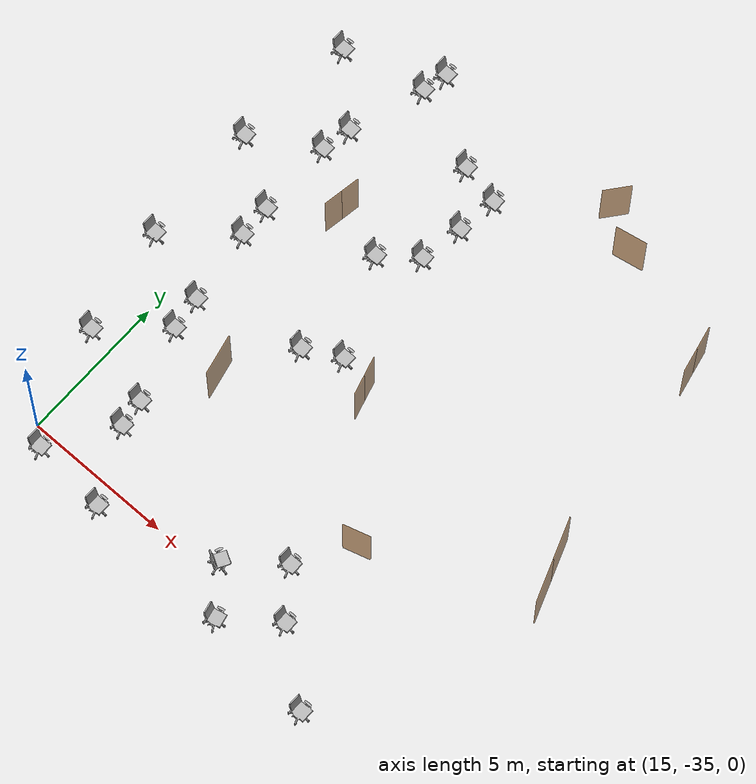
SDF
<sdf version="1.7">
 <world name="world">
  <include><uri>model://sun</uri></include>
  <include>
   <name>OpenRobotics/OfficeChairBlue_116</name>
   <uri>model://OfficeChairBlue</uri>
   <pose>25.001755541891264 -34.734307962925655 0.0 0 0 1.5708</pose>
   <static>True</static>
  </include>
  <include>
   <name>OpenRobotics/OfficeChairBlue_117</name>
   <uri>model://OfficeChairBlue</uri>
   <pose>23.899707976555813 -33.27371550019346 0.0 0 0 1.5708</pose>
   <static>True</static>
  </include>
  <include>
   <name>OpenRobotics/OfficeChairBlue_118</name>
   <uri>model://OfficeChairBlue</uri>
   <pose>22.20021698955487 -34.52182231180213 0.0 0 0 2.63</pose>
   <static>True</static>
  </include>
  <include>
   <name>OpenRobotics/OfficeChairBlue_119</name>
   <uri>model://OfficeChairBlue</uri>
   <pose>23.34208097560178 -35.99562121110694 0.0 0 0 1.7862</pose>
   <static>True</static>
  </include>
  <include>
   <name>OpenRobotics/OfficeChairBlue_123</name>
   <uri>model://OfficeChairBlue</uri>
   <pose>27.179339243920133 -36.47361537063805 0.0 0 0 1.5708</pose>
   <static>True</static>
  </include>
  <include>
   <name>OpenRobotics/OfficeChairBlue_128</name>
   <uri>model://OfficeChairBlue</uri>
   <pose>19.515269589945344 -27.90076548057328 0.0 0 0 1.5708</pose>
   <static>True</static>
  </include>
  <include>
   <name>OpenRobotics/OfficeChairBlue_129</name>
   <uri>model://OfficeChairBlue</uri>
   <pose>20.713605875664694 -27.27572651980084 0.0 0 0 1.5708</pose>
   <static>True</static>
  </include>
  <include>
   <name>OpenRobotics/OfficeChairBlue_130</name>
   <uri>model://OfficeChairBlue</uri>
   <pose>19.193880114846177 -24.112292183176148 0.0 0 0 1.5708</pose>
   <static>True</static>
  </include>
  <include>
   <name>OpenRobotics/OfficeChairBlue_131</name>
   <uri>model://OfficeChairBlue</uri>
   <pose>20.331013437046177 -23.207651277952206 0.0 0 0 1.5708</pose>
   <static>True</static>
  </include>
  <include>
   <name>OpenRobotics/OfficeChairBlue_132</name>
   <uri>model://OfficeChairBlue</uri>
   <pose>20.572671515225622 -21.717295055183225 0.0 0 0 1.5708</pose>
   <static>True</static>
  </include>
  <include>
   <name>OpenRobotics/OfficeChairBlue_133</name>
   <uri>model://OfficeChairBlue</uri>
   <pose>20.739033193841813 -20.348753426472076 0.0 0 0 1.5708</pose>
   <static>True</static>
  </include>
  <include>
   <name>OpenRobotics/OfficeChairBlue_134</name>
   <uri>model://OfficeChairBlue</uri>
   <pose>19.362114347901766 -20.042738608875354 0.0 0 0 1.5708</pose>
   <static>True</static>
  </include>
  <include>
   <name>OpenRobotics/OfficeChairBlue_151</name>
   <uri>model://OfficeChairBlue</uri>
   <pose>16.17640646899789 -29.975260132938327 0.0 0 0 1.5708</pose>
   <static>True</static>
  </include>
  <include>
   <name>OpenRobotics/OfficeChairBlue_152</name>
   <uri>model://OfficeChairBlue</uri>
   <pose>16.026897780336302 -28.822357931248636 0.0 0 0 1.5708</pose>
   <static>True</static>
  </include>
  <include>
   <name>OpenRobotics/OfficeChairBlue_153</name>
   <uri>model://OfficeChairBlue</uri>
   <pose>15.663917885583086 -26.302786655287193 0.0 0 0 1.5708</pose>
   <static>True</static>
  </include>
  <include>
   <name>OpenRobotics/OfficeChairBlue_154</name>
   <uri>model://OfficeChairBlue</uri>
   <pose>15.621243355464122 -25.171172440908585 0.0 0 0 1.5708</pose>
   <static>True</static>
  </include>
  <include>
   <name>OpenRobotics/OfficeChairBlue_155</name>
   <uri>model://OfficeChairBlue</uri>
   <pose>15.599856812656235 -22.502191031782363 0.0 0 0 1.5708</pose>
   <static>True</static>
  </include>
  <include>
   <name>OpenRobotics/OfficeChairBlue_156</name>
   <uri>model://OfficeChairBlue</uri>
   <pose>15.792040031436787 -21.477312420449564 0.0 0 0 1.5708</pose>
   <static>True</static>
  </include>
  <include>
   <name>OpenRobotics/OfficeChairBlue_157</name>
   <uri>model://OfficeChairBlue</uri>
   <pose>16.624833979485846 -18.936453157177045 0.0 0 0 1.5708</pose>
   <static>True</static>
  </include>
  <include>
   <name>OpenRobotics/OfficeChairBlue_158</name>
   <uri>model://OfficeChairBlue</uri>
   <pose>16.816918642769583 -18.08237122181691 0.0 0 0 1.5708</pose>
   <static>True</static>
  </include>
  <include>
   <name>OpenRobotics/OfficeChairBlue_176</name>
   <uri>model://OfficeChairBlue</uri>
   <pose>13.827730424505924 -19.555677343637665 0.0 0 0 1.5708</pose>
   <static>True</static>
  </include>
  <include>
   <name>OpenRobotics/OfficeChairBlue_177</name>
   <uri>model://OfficeChairBlue</uri>
   <pose>13.46475052975271 -23.783313934822566 0.0 0 0 1.5708</pose>
   <static>True</static>
  </include>
  <include>
   <name>OpenRobotics/OfficeChairBlue_178</name>
   <uri>model://OfficeChairBlue</uri>
   <pose>13.592872675606408 -28.05362505612643 0.0 0 0 1.5708</pose>
   <static>True</static>
  </include>
  <include>
   <name>OpenRobotics/OfficeChairBlue_179</name>
   <uri>model://OfficeChairBlue</uri>
   <pose>15.706690971198858 -35.505406169971316 0.0 0 0 1.5708</pose>
   <static>True</static>
  </include>
  <include>
   <name>OpenRobotics/OfficeChairBlue_180</name>
   <uri>model://OfficeChairBlue</uri>
   <pose>14.27605937949707 -31.683424003658597 0.0 0 0 1.5708</pose>
   <static>True</static>
  </include>
  <include>
   <name>OpenRobotics/OfficeChairBlue_181</name>
   <uri>model://OfficeChairBlue</uri>
   <pose>18.290027653596717 -35.7446989162273 0.0 0 0 1.5708</pose>
   <static>True</static>
  </include>
  <include>
   <name>OpenRobotics/OfficeChairBlue_182</name>
   <uri>model://OfficeChairBlue</uri>
   <pose>17.1190897959907 -33.363006780303806 0.0 0 0 1.5708</pose>
   <static>True</static>
  </include>
  <include>
   <name>OpenRobotics/OfficeChairBlue_183</name>
   <uri>model://OfficeChairBlue</uri>
   <pose>16.99362864855088 -32.421998896756776 0.0 0 0 1.5708</pose>
   <static>True</static>
  </include>
  <model name="double_hinged_5">
   <pose>29.936084322956134 -28.39053702197326 0.0 0 0 1.9207883309930311</pose>
   <link name="right">
    <pose>0.7085763028540664 0 1.11 0 0 0</pose>
    <visual name="right_visual">
     <geometry><box><size>1.4071526057081327 0.03 2.2</size></box></geometry>
     <material><ambient>0.5 0.25 0 0.6</ambient><diffuse>0.5 0.25 0 0.6</diffuse></material>
    </visual>
    <collision name="right_collision">
     <geometry><box><size>1.4071526057081327 0.03 2.2</size></box></geometry>
     <surface><contact><collide_bitmask>0x02</collide_bitmask></contact></surface>
    </collision>
    <inertial>
     <mass>50.0</mass>
     <inertia><ixx>20.17041666666667</ixx><iyy>28.416993565629955</iyy><izz>8.254076898963282</izz></inertia>
    </inertial>
   </link>
   <joint name="right_joint" type="revolute">
    <parent>world</parent>
    <child>right</child>
    <axis><xyz>0 0 -1</xyz><limit><lower>0</lower><upper>1.57</upper></limit></axis>
    <pose>0.7085763028540664 0 0 0 0 0</pose>
   </joint>
   <link name="left">
    <pose>-0.7085763028540664 0 1.11 0 0 0</pose>
    <visual name="left_visual">
     <geometry><box><size>1.4071526057081327 0.03 2.2</size></box></geometry>
     <material><ambient>0.5 0.25 0 0.6</ambient><diffuse>0.5 0.25 0 0.6</diffuse></material>
    </visual>
    <collision name="left_collision">
     <geometry><box><size>1.4071526057081327 0.03 2.2</size></box></geometry>
     <surface><contact><collide_bitmask>0x02</collide_bitmask></contact></surface>
    </collision>
    <inertial>
     <mass>50.0</mass>
     <inertia><ixx>20.17041666666667</ixx><iyy>28.416993565629955</iyy><izz>8.254076898963282</izz></inertia>
    </inertial>
   </link>
   <joint name="left_joint" type="revolute">
    <parent>world</parent>
    <child>left</child>
    <axis><xyz>0 0 -1</xyz><limit><lower>-1.57</lower><upper>0</upper></limit></axis>
    <pose>-0.7085763028540664 0 0 0 0 0</pose>
   </joint>
   <plugin name="door" filename="libdoor.so">
    <v_max_door>0.5</v_max_door>
    <a_max_door>0.3</a_max_door>
    <a_nom_door>0.15</a_nom_door>
    <dx_min_door>0.01</dx_min_door>
    <f_max_door>500.0</f_max_door>
    <door name="double_hinged_5" type="DoubleSwingDoor" left_joint_name="left_joint" right_joint_name="right_joint"/>
   </plugin>
  </model>
  <model name="double_hinged_9">
   <pose>17.40721679091631 -23.747587567228745 0.0 0 0 -1.7315651079040493</pose>
   <link name="right">
    <pose>0.3264617192639262 0 1.11 0 0 0</pose>
    <visual name="right_visual">
     <geometry><box><size>0.6429234385278524 0.03 2.2</size></box></geometry>
     <material><ambient>0.5 0.25 0 0.6</ambient><diffuse>0.5 0.25 0 0.6</diffuse></material>
    </visual>
    <collision name="right_collision">
     <geometry><box><size>0.6429234385278524 0.03 2.2</size></box></geometry>
     <surface><contact><collide_bitmask>0x02</collide_bitmask></contact></surface>
    </collision>
    <inertial>
     <mass>50.0</mass>
     <inertia><ixx>20.17041666666667</ixx><iyy>21.88896061586866</iyy><izz>1.7260439492019886</izz></inertia>
    </inertial>
   </link>
   <joint name="right_joint" type="revolute">
    <parent>world</parent>
    <child>right</child>
    <axis><xyz>0 0 -1</xyz><limit><lower>0</lower><upper>1.57</upper></limit></axis>
    <pose>0.3264617192639262 0 0 0 0 0</pose>
   </joint>
   <link name="left">
    <pose>-0.3264617192639262 0 1.11 0 0 0</pose>
    <visual name="left_visual">
     <geometry><box><size>0.6429234385278524 0.03 2.2</size></box></geometry>
     <material><ambient>0.5 0.25 0 0.6</ambient><diffuse>0.5 0.25 0 0.6</diffuse></material>
    </visual>
    <collision name="left_collision">
     <geometry><box><size>0.6429234385278524 0.03 2.2</size></box></geometry>
     <surface><contact><collide_bitmask>0x02</collide_bitmask></contact></surface>
    </collision>
    <inertial>
     <mass>50.0</mass>
     <inertia><ixx>20.17041666666667</ixx><iyy>21.88896061586866</iyy><izz>1.7260439492019886</izz></inertia>
    </inertial>
   </link>
   <joint name="left_joint" type="revolute">
    <parent>world</parent>
    <child>left</child>
    <axis><xyz>0 0 -1</xyz><limit><lower>-1.57</lower><upper>0</upper></limit></axis>
    <pose>-0.3264617192639262 0 0 0 0 0</pose>
   </joint>
   <plugin name="door" filename="libdoor.so">
    <v_max_door>0.5</v_max_door>
    <a_max_door>0.3</a_max_door>
    <a_nom_door>0.15</a_nom_door>
    <dx_min_door>0.01</dx_min_door>
    <f_max_door>500.0</f_max_door>
    <door name="double_hinged_9" type="DoubleSwingDoor" left_joint_name="left_joint" right_joint_name="right_joint"/>
   </plugin>
  </model>
  <model name="door_54">
   <pose>18.15091656984864 -30.19085028221138 0.0 0 0 -1.3508722706605503</pose>
   <link name="right">
    <pose>0 0 1.11 0 0 0</pose>
    <visual name="right_visual">
     <geometry><box><size>1.3782805116854728 0.03 2.2</size></box></geometry>
     <material><ambient>0.5 0.25 0 0.6</ambient><diffuse>0.5 0.25 0 0.6</diffuse></material>
    </visual>
    <collision name="right_collision">
     <geometry><box><size>1.3782805116854728 0.03 2.2</size></box></geometry>
     <surface><contact><collide_bitmask>0x02</collide_bitmask></contact></surface>
    </collision>
    <inertial>
     <mass>50.0</mass>
     <inertia><ixx>20.17041666666667</ixx><iyy>28.08190487038321</iyy><izz>7.918988203716537</izz></inertia>
    </inertial>
   </link>
   <joint name="right_joint" type="revolute">
    <parent>world</parent>
    <child>right</child>
    <axis><xyz>0 0 -1</xyz><limit><lower>0</lower><upper>1.57</upper></limit></axis>
    <pose>0.6941402558427364 0 0 0 0 0</pose>
   </joint>
   <plugin name="door" filename="libdoor.so">
    <v_max_door>0.5</v_max_door>
    <a_max_door>0.3</a_max_door>
    <a_nom_door>0.15</a_nom_door>
    <dx_min_door>0.01</dx_min_door>
    <f_max_door>500.0</f_max_door>
    <door name="door_54" type="SwingDoor" left_joint_name="empty_joint" right_joint_name="right_joint"/>
   </plugin>
  </model>
  <model name="door_56">
   <pose>24.983818441471747 -31.59546322275519 0.0 0 0 0.28763399085108016</pose>
   <link name="right">
    <pose>0 0 1.11 0 0 0</pose>
    <visual name="right_visual">
     <geometry><box><size>0.9283616874909669 0.03 2.2</size></box></geometry>
     <material><ambient>0.5 0.25 0 0.6</ambient><diffuse>0.5 0.25 0 0.6</diffuse></material>
    </visual>
    <collision name="right_collision">
     <geometry><box><size>0.9283616874909669 0.03 2.2</size></box></geometry>
     <surface><contact><collide_bitmask>0x02</collide_bitmask></contact></surface>
    </collision>
    <inertial>
     <mass>50.0</mass>
     <inertia><ixx>20.17041666666667</ixx><iyy>23.757730928337818</iyy><izz>3.594814261671149</izz></inertia>
    </inertial>
   </link>
   <joint name="right_joint" type="revolute">
    <parent>world</parent>
    <child>right</child>
    <axis><xyz>0 0 -1</xyz><limit><lower>0</lower><upper>1.57</upper></limit></axis>
    <pose>0.46918084374548347 0 0 0 0 0</pose>
   </joint>
   <plugin name="door" filename="libdoor.so">
    <v_max_door>0.5</v_max_door>
    <a_max_door>0.3</a_max_door>
    <a_nom_door>0.15</a_nom_door>
    <dx_min_door>0.01</dx_min_door>
    <f_max_door>500.0</f_max_door>
    <door name="door_56" type="SwingDoor" left_joint_name="empty_joint" right_joint_name="right_joint"/>
   </plugin>
  </model>
  <model name="double_hinged_10">
   <pose>21.907950663763216 -27.77461444465579 0.0 0 0 1.8399466940307447</pose>
   <link name="right">
    <pose>0.33477273958650616 0 1.11 0 0 0</pose>
    <visual name="right_visual">
     <geometry><box><size>0.6595454791730123 0.03 2.2</size></box></geometry>
     <material><ambient>0.5 0.25 0 0.6</ambient><diffuse>0.5 0.25 0 0.6</diffuse></material>
    </visual>
    <collision name="right_collision">
     <geometry><box><size>0.6595454791730123 0.03 2.2</size></box></geometry>
     <surface><contact><collide_bitmask>0x02</collide_bitmask></contact></surface>
    </collision>
    <inertial>
     <mass>50.0</mass>
     <inertia><ixx>20.17041666666667</ixx><iyy>21.979167662906498</iyy><izz>1.816250996239827</izz></inertia>
    </inertial>
   </link>
   <joint name="right_joint" type="revolute">
    <parent>world</parent>
    <child>right</child>
    <axis><xyz>0 0 -1</xyz><limit><lower>0</lower><upper>1.57</upper></limit></axis>
    <pose>0.33477273958650616 0 0 0 0 0</pose>
   </joint>
   <link name="left">
    <pose>-0.33477273958650616 0 1.11 0 0 0</pose>
    <visual name="left_visual">
     <geometry><box><size>0.6595454791730123 0.03 2.2</size></box></geometry>
     <material><ambient>0.5 0.25 0 0.6</ambient><diffuse>0.5 0.25 0 0.6</diffuse></material>
    </visual>
    <collision name="left_collision">
     <geometry><box><size>0.6595454791730123 0.03 2.2</size></box></geometry>
     <surface><contact><collide_bitmask>0x02</collide_bitmask></contact></surface>
    </collision>
    <inertial>
     <mass>50.0</mass>
     <inertia><ixx>20.17041666666667</ixx><iyy>21.979167662906498</iyy><izz>1.816250996239827</izz></inertia>
    </inertial>
   </link>
   <joint name="left_joint" type="revolute">
    <parent>world</parent>
    <child>left</child>
    <axis><xyz>0 0 -1</xyz><limit><lower>-1.57</lower><upper>0</upper></limit></axis>
    <pose>-0.33477273958650616 0 0 0 0 0</pose>
   </joint>
   <plugin name="door" filename="libdoor.so">
    <v_max_door>0.5</v_max_door>
    <a_max_door>0.3</a_max_door>
    <a_nom_door>0.15</a_nom_door>
    <dx_min_door>0.01</dx_min_door>
    <f_max_door>500.0</f_max_door>
    <door name="double_hinged_10" type="DoubleSwingDoor" left_joint_name="left_joint" right_joint_name="right_joint"/>
   </plugin>
  </model>
  <model name="door_58">
   <pose>23.652925012542223 -18.07877394618333 0.0 0 0 0.893622733396203</pose>
   <link name="right">
    <pose>0 0 1.11 0 0 0</pose>
    <visual name="right_visual">
     <geometry><box><size>0.9390755207673194 0.03 2.2</size></box></geometry>
     <material><ambient>0.5 0.25 0 0.6</ambient><diffuse>0.5 0.25 0 0.6</diffuse></material>
    </visual>
    <collision name="right_collision">
     <geometry><box><size>0.9390755207673194 0.03 2.2</size></box></geometry>
     <surface><contact><collide_bitmask>0x02</collide_bitmask></contact></surface>
    </collision>
    <inertial>
     <mass>50.0</mass>
     <inertia><ixx>20.17041666666667</ixx><iyy>23.841095140435055</iyy><izz>3.678178473768384</izz></inertia>
    </inertial>
   </link>
   <joint name="right_joint" type="revolute">
    <parent>world</parent>
    <child>right</child>
    <axis><xyz>0 0 -1</xyz><limit><lower>0</lower><upper>1.57</upper></limit></axis>
    <pose>0.4745377603836597 0 0 0 0 0</pose>
   </joint>
   <plugin name="door" filename="libdoor.so">
    <v_max_door>0.5</v_max_door>
    <a_max_door>0.3</a_max_door>
    <a_nom_door>0.15</a_nom_door>
    <dx_min_door>0.01</dx_min_door>
    <f_max_door>500.0</f_max_door>
    <door name="door_58" type="SwingDoor" left_joint_name="empty_joint" right_joint_name="right_joint"/>
   </plugin>
  </model>
  <model name="door_59">
   <pose>24.977264500933845 -18.97804357683109 0.0 0 0 0.17916546595804034</pose>
   <link name="right">
    <pose>0 0 1.11 0 0 0</pose>
    <visual name="right_visual">
     <geometry><box><size>1.066205903235717 0.03 2.2</size></box></geometry>
     <material><ambient>0.5 0.25 0 0.6</ambient><diffuse>0.5 0.25 0 0.6</diffuse></material>
    </visual>
    <collision name="right_collision">
     <geometry><box><size>1.066205903235717 0.03 2.2</size></box></geometry>
     <surface><contact><collide_bitmask>0x02</collide_bitmask></contact></surface>
    </collision>
    <inertial>
     <mass>50.0</mass>
     <inertia><ixx>20.17041666666667</ixx><iyy>24.903312617061218</iyy><izz>4.740395950394546</izz></inertia>
    </inertial>
   </link>
   <joint name="right_joint" type="revolute">
    <parent>world</parent>
    <child>right</child>
    <axis><xyz>0 0 -1</xyz><limit><lower>0</lower><upper>1.57</upper></limit></axis>
    <pose>0.5381029516178585 0 0 0 0 0</pose>
   </joint>
   <plugin name="door" filename="libdoor.so">
    <v_max_door>0.5</v_max_door>
    <a_max_door>0.3</a_max_door>
    <a_nom_door>0.15</a_nom_door>
    <dx_min_door>0.01</dx_min_door>
    <f_max_door>500.0</f_max_door>
    <door name="door_59" type="SwingDoor" left_joint_name="empty_joint" right_joint_name="right_joint"/>
   </plugin>
  </model>
  <model name="double_hinged_12">
   <pose>28.84679969445765 -20.480669958952983 0.0 0 0 1.7853151785339259</pose>
   <link name="right">
    <pose>0.40440297328996455 0 1.11 0 0 0</pose>
    <visual name="right_visual">
     <geometry><box><size>0.7988059465799291 0.03 2.2</size></box></geometry>
     <material><ambient>0.5 0.25 0 0.6</ambient><diffuse>0.5 0.25 0 0.6</diffuse></material>
    </visual>
    <collision name="right_collision">
     <geometry><box><size>0.7988059465799291 0.03 2.2</size></box></geometry>
     <surface><contact><collide_bitmask>0x02</collide_bitmask></contact></surface>
    </collision>
    <inertial>
     <mass>50.0</mass>
     <inertia><ixx>20.17041666666667</ixx><iyy>22.82537891788107</iyy><izz>2.6624622512144023</izz></inertia>
    </inertial>
   </link>
   <joint name="right_joint" type="revolute">
    <parent>world</parent>
    <child>right</child>
    <axis><xyz>0 0 -1</xyz><limit><lower>0</lower><upper>1.57</upper></limit></axis>
    <pose>0.40440297328996455 0 0 0 0 0</pose>
   </joint>
   <link name="left">
    <pose>-0.40440297328996455 0 1.11 0 0 0</pose>
    <visual name="left_visual">
     <geometry><box><size>0.7988059465799291 0.03 2.2</size></box></geometry>
     <material><ambient>0.5 0.25 0 0.6</ambient><diffuse>0.5 0.25 0 0.6</diffuse></material>
    </visual>
    <collision name="left_collision">
     <geometry><box><size>0.7988059465799291 0.03 2.2</size></box></geometry>
     <surface><contact><collide_bitmask>0x02</collide_bitmask></contact></surface>
    </collision>
    <inertial>
     <mass>50.0</mass>
     <inertia><ixx>20.17041666666667</ixx><iyy>22.82537891788107</iyy><izz>2.6624622512144023</izz></inertia>
    </inertial>
   </link>
   <joint name="left_joint" type="revolute">
    <parent>world</parent>
    <child>left</child>
    <axis><xyz>0 0 -1</xyz><limit><lower>-1.57</lower><upper>0</upper></limit></axis>
    <pose>-0.40440297328996455 0 0 0 0 0</pose>
   </joint>
   <plugin name="door" filename="libdoor.so">
    <v_max_door>0.5</v_max_door>
    <a_max_door>0.3</a_max_door>
    <a_nom_door>0.15</a_nom_door>
    <dx_min_door>0.01</dx_min_door>
    <f_max_door>500.0</f_max_door>
    <door name="double_hinged_12" type="DoubleSwingDoor" left_joint_name="left_joint" right_joint_name="right_joint"/>
   </plugin>
  </model>
 </world>
</sdf>
